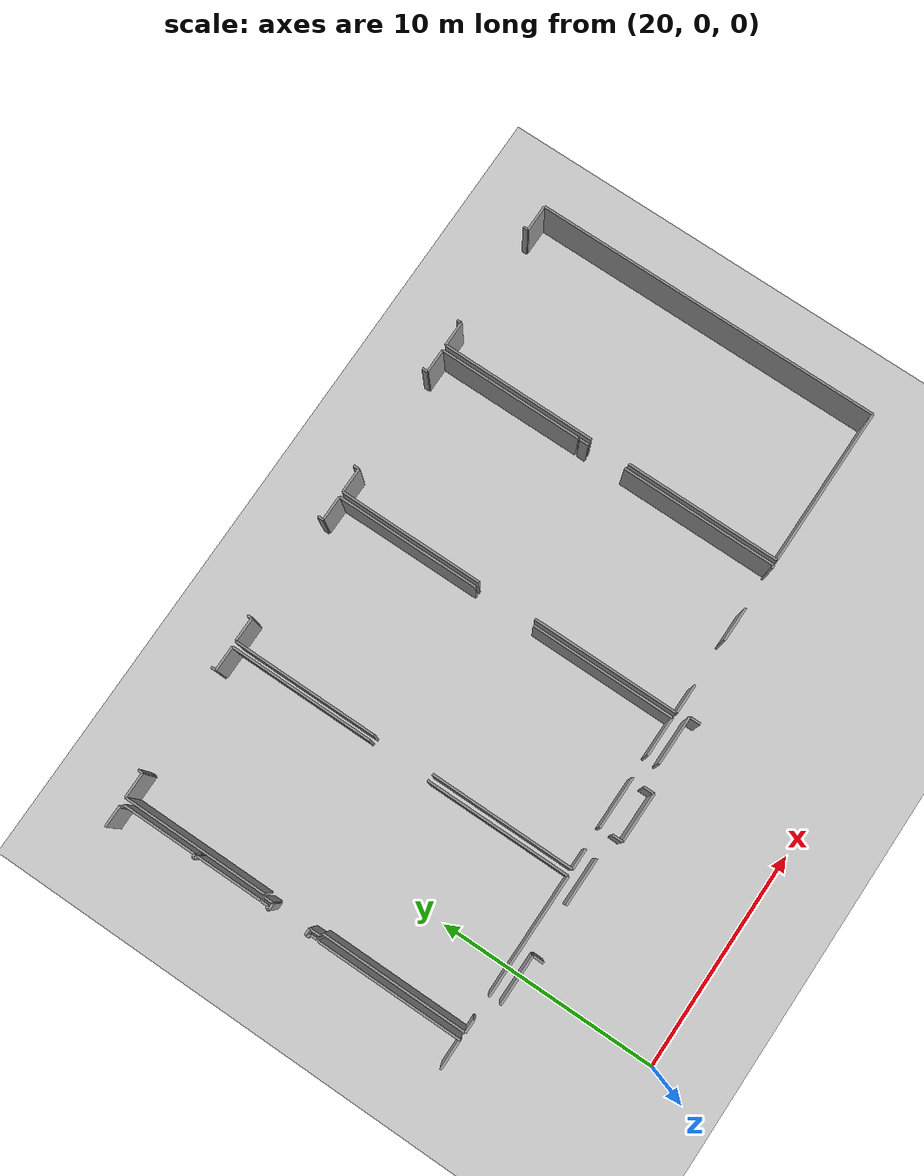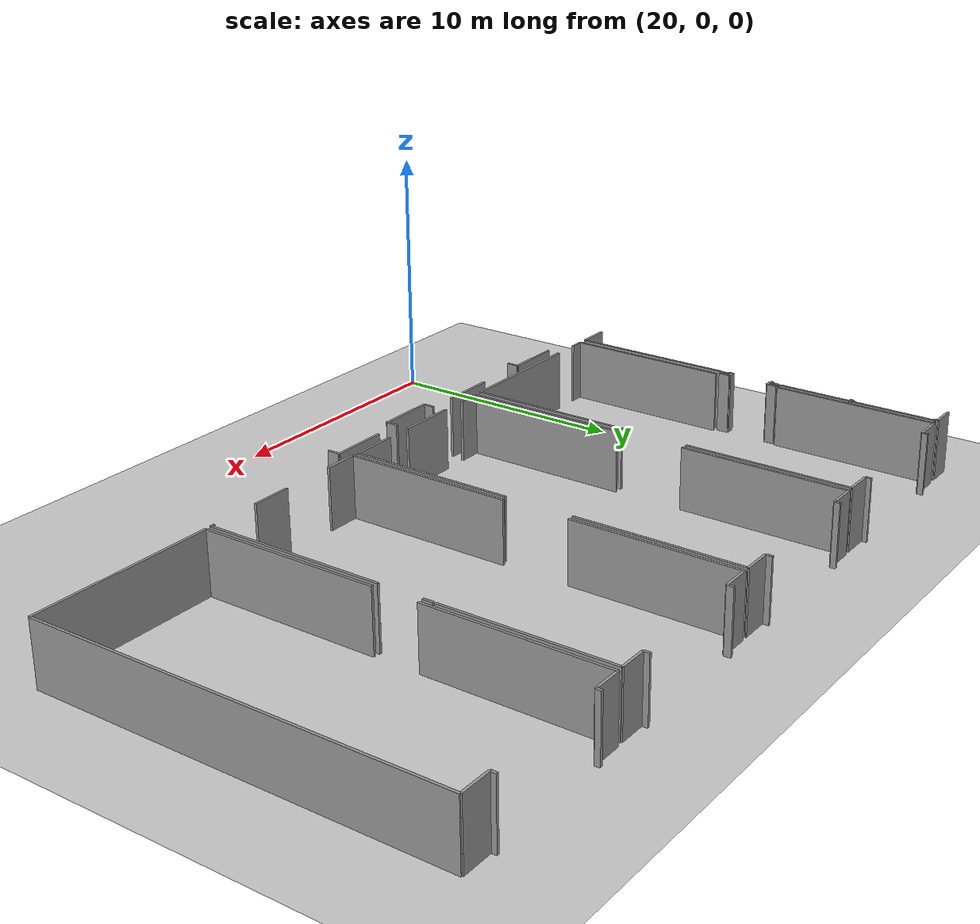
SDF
<sdf version="1.6">
 <world name="default">
  <model name="ground_plane">
   <static>1</static>
   <link name="link">
    <collision name="collision">
     <geometry><plane><normal>0 0 1</normal><size>100 100</size></plane></geometry>
     <surface><friction><ode><mu>100</mu><mu2>50</mu2></ode></friction></surface>
    </collision>
    <visual name="visual">
     <cast_shadows>0</cast_shadows>
     <geometry><plane><normal>0 0 1</normal><size>100 100</size></plane></geometry>
     <material>
      <script><uri>file://media/materials/scripts/gazebo.material</uri><name>Gazebo/Grey</name></script>
     </material>
    </visual>
   </link>
  </model>
  <model name="50045230">
   <static>1</static>
   <link name="Wall_10">
    <collision name="Wall_10_Collision">
     <geometry><box><size>0.306092653015 0.1 2.5</size></box></geometry>
     <pose>0.153046326507 0 1.25 0 0 0</pose>
    </collision>
    <visual name="Wall_10_Visual">
     <pose>0.153046326507 0 1.25 0 0 0</pose>
     <geometry><box><size>0.306092653015 0.1 2.5</size></box></geometry>
     <material>
      <script><uri>file://media/materials/scripts/gazebo.material</uri><name>Gazebo/Grey</name></script>
      <ambient>1 1 1 1</ambient>
     </material>
    </visual>
    <pose>63.6178856628 -7.01740576637 0 0 0 -1.57079632679</pose>
   </link>
   <link name="Wall_11">
    <collision name="Wall_11_Collision">
     <geometry><box><size>0.116927139538 0.1 2.5</size></box></geometry>
     <pose>0.0584635697691 0 1.25 0 0 0</pose>
    </collision>
    <visual name="Wall_11_Visual">
     <pose>0.0584635697691 0 1.25 0 0 0</pose>
     <geometry><box><size>0.116927139538 0.1 2.5</size></box></geometry>
     <material>
      <script><uri>file://media/materials/scripts/gazebo.material</uri><name>Gazebo/Grey</name></script>
      <ambient>1 1 1 1</ambient>
     </material>
    </visual>
    <pose>63.6178856628 -7.32349841939 0 0 0 3.14159265359</pose>
   </link>
   <link name="Wall_12">
    <collision name="Wall_12_Collision">
     <geometry><box><size>0.100168852438 0.1 2.5</size></box></geometry>
     <pose>0.0500844262191 0 1.25 0 0 0</pose>
    </collision>
    <visual name="Wall_12_Visual">
     <pose>0.0500844262191 0 1.25 0 0 0</pose>
     <geometry><box><size>0.100168852438 0.1 2.5</size></box></geometry>
     <material>
      <script><uri>file://media/materials/scripts/gazebo.material</uri><name>Gazebo/Grey</name></script>
      <ambient>1 1 1 1</ambient>
     </material>
    </visual>
    <pose>63.5009585232 -7.32349841939 0 0 0 -1.57079632679</pose>
   </link>
   <link name="Wall_13">
    <collision name="Wall_13_Collision">
     <geometry><box><size>0.317264844415 0.1 2.5</size></box></geometry>
     <pose>0.158632422207 0 1.25 0 0 0</pose>
    </collision>
    <visual name="Wall_13_Visual">
     <pose>0.158632422207 0 1.25 0 0 0</pose>
     <geometry><box><size>0.317264844415 0.1 2.5</size></box></geometry>
     <material>
      <script><uri>file://media/materials/scripts/gazebo.material</uri><name>Gazebo/Grey</name></script>
      <ambient>1 1 1 1</ambient>
     </material>
    </visual>
    <pose>63.5009585232 -7.42366727183 0 0 0 0.0</pose>
   </link>
   <link name="Wall_14">
    <collision name="Wall_14_Collision">
     <geometry><box><size>0.400675409753 0.1 2.5</size></box></geometry>
     <pose>0.200337704876 0 1.25 0 0 0</pose>
    </collision>
    <visual name="Wall_14_Visual">
     <pose>0.200337704876 0 1.25 0 0 0</pose>
     <geometry><box><size>0.400675409753 0.1 2.5</size></box></geometry>
     <material>
      <script><uri>file://media/materials/scripts/gazebo.material</uri><name>Gazebo/Grey</name></script>
      <ambient>1 1 1 1</ambient>
     </material>
    </visual>
    <pose>63.8182233677 -7.42366727183 0 0 0 1.57079632679</pose>
   </link>
   <link name="Wall_15">
    <collision name="Wall_15_Collision">
     <geometry><box><size>0.408673683141 0.1 2.5</size></box></geometry>
     <pose>0.204336841571 0 1.25 0 0 0</pose>
    </collision>
    <visual name="Wall_15_Visual">
     <pose>0.204336841571 0 1.25 0 0 0</pose>
     <geometry><box><size>0.408673683141 0.1 2.5</size></box></geometry>
     <material>
      <script><uri>file://media/materials/scripts/gazebo.material</uri><name>Gazebo/Grey</name></script>
      <ambient>1 1 1 1</ambient>
     </material>
    </visual>
    <pose>85.9985780847 -7.02299186207 0 0 0 -1.57079632679</pose>
   </link>
   <link name="Wall_16">
    <collision name="Wall_16_Collision">
     <geometry><box><size>7.1857503777 0.1 2.5</size></box></geometry>
     <pose>3.59287518885 0 1.25 0 0 0</pose>
    </collision>
    <visual name="Wall_16_Visual">
     <pose>3.59287518885 0 1.25 0 0 0</pose>
     <geometry><box><size>7.1857503777 0.1 2.5</size></box></geometry>
     <material>
      <script><uri>file://media/materials/scripts/gazebo.material</uri><name>Gazebo/Grey</name></script>
      <ambient>1 1 1 1</ambient>
     </material>
    </visual>
    <pose>85.9985780847 -9.19166656087 0 0 0 -1.57079632679</pose>
   </link>
   <link name="Wall_17">
    <collision name="Wall_17_Collision">
     <geometry><box><size>0.150443713738 0.1 2.5</size></box></geometry>
     <pose>0.075221856869 0 1.25 0 0 0</pose>
    </collision>
    <visual name="Wall_17_Visual">
     <pose>0.075221856869 0 1.25 0 0 0</pose>
     <geometry><box><size>0.150443713738 0.1 2.5</size></box></geometry>
     <material>
      <script><uri>file://media/materials/scripts/gazebo.material</uri><name>Gazebo/Grey</name></script>
      <ambient>1 1 1 1</ambient>
     </material>
    </visual>
    <pose>85.9985780847 -16.3774169386 0 0 0 3.14159265359</pose>
   </link>
   <link name="Wall_18">
    <collision name="Wall_18_Collision">
     <geometry><box><size>1.57426333363 0.1 2.5</size></box></geometry>
     <pose>0.787131666815 0 1.25 0 0 0</pose>
    </collision>
    <visual name="Wall_18_Visual">
     <pose>0.787131666815 0 1.25 0 0 0</pose>
     <geometry><box><size>1.57426333363 0.1 2.5</size></box></geometry>
     <material>
      <script><uri>file://media/materials/scripts/gazebo.material</uri><name>Gazebo/Grey</name></script>
      <ambient>1 1 1 1</ambient>
     </material>
    </visual>
    <pose>83.893000876 -16.3774169386 0 0 0 3.14159265359</pose>
   </link>
   <link name="Wall_19">
    <collision name="Wall_19_Collision">
     <geometry><box><size>1.3432021024 0.1 2.5</size></box></geometry>
     <pose>0.671601051202 0 1.25 0 0 0</pose>
    </collision>
    <visual name="Wall_19_Visual">
     <pose>0.671601051202 0 1.25 0 0 0</pose>
     <geometry><box><size>1.3432021024 0.1 2.5</size></box></geometry>
     <material>
      <script><uri>file://media/materials/scripts/gazebo.material</uri><name>Gazebo/Grey</name></script>
      <ambient>1 1 1 1</ambient>
     </material>
    </visual>
    <pose>80.1528558914 -16.3774169386 0 0 0 3.14159265359</pose>
   </link>
   <link name="Wall_20">
    <collision name="Wall_20_Collision">
     <geometry><box><size>6.75409752815 0.1 2.5</size></box></geometry>
     <pose>3.37704876408 0 1.25 0 0 0</pose>
    </collision>
    <visual name="Wall_20_Visual">
     <pose>3.37704876408 0 1.25 0 0 0</pose>
     <geometry><box><size>6.75409752815 0.1 2.5</size></box></geometry>
     <material>
      <script><uri>file://media/materials/scripts/gazebo.material</uri><name>Gazebo/Grey</name></script>
      <ambient>1 1 1 1</ambient>
     </material>
    </visual>
    <pose>78.809653789 -16.3774169386 0 0 0 1.57079632679</pose>
   </link>
   <link name="Wall_21">
    <collision name="Wall_21_Collision">
     <geometry><box><size>0.473294653853 0.1 2.5</size></box></geometry>
     <pose>0.236647326926 0 1.25 0 0 0</pose>
    </collision>
    <visual name="Wall_21_Visual">
     <pose>0.236647326926 0 1.25 0 0 0</pose>
     <geometry><box><size>0.473294653853 0.1 2.5</size></box></geometry>
     <material>
      <script><uri>file://media/materials/scripts/gazebo.material</uri><name>Gazebo/Grey</name></script>
      <ambient>1 1 1 1</ambient>
     </material>
    </visual>
    <pose>63.813525969 -9.62331941041 0 0 0 1.57079632679</pose>
   </link>
   <link name="Wall_22">
    <collision name="Wall_22_Collision">
     <geometry><box><size>0.316757017533 0.1 2.5</size></box></geometry>
     <pose>0.158378508766 0 1.25 0 0 0</pose>
    </collision>
    <visual name="Wall_22_Visual">
     <pose>0.158378508766 0 1.25 0 0 0</pose>
     <geometry><box><size>0.316757017533 0.1 2.5</size></box></geometry>
     <material>
      <script><uri>file://media/materials/scripts/gazebo.material</uri><name>Gazebo/Grey</name></script>
      <ambient>1 1 1 1</ambient>
     </material>
    </visual>
    <pose>63.813525969 -9.15002475656 0 0 0 3.14159265359</pose>
   </link>
   <link name="Wall_24">
    <collision name="Wall_24_Collision">
     <geometry><box><size>0.143968920995 0.1 2.5</size></box></geometry>
     <pose>0.0719844604974 0 1.25 0 0 0</pose>
    </collision>
    <visual name="Wall_24_Visual">
     <pose>0.0719844604974 0 1.25 0 0 0</pose>
     <geometry><box><size>0.143968920995 0.1 2.5</size></box></geometry>
     <material>
      <script><uri>file://media/materials/scripts/gazebo.material</uri><name>Gazebo/Grey</name></script>
      <ambient>1 1 1 1</ambient>
     </material>
    </visual>
    <pose>63.4967689515 -9.2843449668 0 0 0 0.0</pose>
   </link>
   <link name="Wall_25">
    <collision name="Wall_25_Collision">
     <geometry><box><size>0.336054439042 0.1 2.5</size></box></geometry>
     <pose>0.168027219521 0 1.25 0 0 0</pose>
    </collision>
    <visual name="Wall_25_Visual">
     <pose>0.168027219521 0 1.25 0 0 0</pose>
     <geometry><box><size>0.336054439042 0.1 2.5</size></box></geometry>
     <material>
      <script><uri>file://media/materials/scripts/gazebo.material</uri><name>Gazebo/Grey</name></script>
      <ambient>1 1 1 1</ambient>
     </material>
    </visual>
    <pose>63.6407378725 -9.2843449668 0 0 0 -1.57079632679</pose>
   </link>
   <link name="Wall_66">
    <collision name="Wall_66_Collision">
     <geometry><box><size>3.03439257557 0.1 2.5</size></box></geometry>
     <pose>1.51719628779 0 1.25 0 0 0</pose>
    </collision>
    <visual name="Wall_66_Visual">
     <pose>1.51719628779 0 1.25 0 0 0</pose>
     <geometry><box><size>3.03439257557 0.1 2.5</size></box></geometry>
     <material>
      <script><uri>file://media/materials/scripts/gazebo.material</uri><name>Gazebo/Grey</name></script>
      <ambient>1 1 1 1</ambient>
     </material>
    </visual>
    <pose>63.6307082915 -6.94008912362 0 0 0 1.57079632679</pose>
   </link>
   <link name="Wall_67">
    <collision name="Wall_67_Collision">
     <geometry><box><size>0.130892378788 0.1 2.5</size></box></geometry>
     <pose>0.065446189394 0 1.25 0 0 0</pose>
    </collision>
    <visual name="Wall_67_Visual">
     <pose>0.065446189394 0 1.25 0 0 0</pose>
     <geometry><box><size>0.130892378788 0.1 2.5</size></box></geometry>
     <material>
      <script><uri>file://media/materials/scripts/gazebo.material</uri><name>Gazebo/Grey</name></script>
      <ambient>1 1 1 1</ambient>
     </material>
    </visual>
    <pose>63.6307082915 -3.90569654805 0 0 0 3.14159265359</pose>
   </link>
   <link name="Wall_68">
    <collision name="Wall_68_Collision">
     <geometry><box><size>0.123401932281 0.1 2.5</size></box></geometry>
     <pose>0.0617009661406 0 1.25 0 0 0</pose>
    </collision>
    <visual name="Wall_68_Visual">
     <pose>0.0617009661406 0 1.25 0 0 0</pose>
     <geometry><box><size>0.123401932281 0.1 2.5</size></box></geometry>
     <material>
      <script><uri>file://media/materials/scripts/gazebo.material</uri><name>Gazebo/Grey</name></script>
      <ambient>1 1 1 1</ambient>
     </material>
    </visual>
    <pose>63.4998159128 -3.90569654805 0 0 0 1.57079632679</pose>
   </link>
   <link name="Wall_69">
    <collision name="Wall_69_Collision">
     <geometry><box><size>0.138001955134 0.1 2.5</size></box></geometry>
     <pose>0.0690009775668 0 1.25 0 0 0</pose>
    </collision>
    <visual name="Wall_69_Visual">
     <pose>0.0690009775668 0 1.25 0 0 0</pose>
     <geometry><box><size>0.138001955134 0.1 2.5</size></box></geometry>
     <material>
      <script><uri>file://media/materials/scripts/gazebo.material</uri><name>Gazebo/Grey</name></script>
      <ambient>1 1 1 1</ambient>
     </material>
    </visual>
    <pose>63.4998159128 -3.78229461577 0 0 0 0.0</pose>
   </link>
   <link name="Wall_70">
    <collision name="Wall_70_Collision">
     <geometry><box><size>3.40840707403 0.1 2.5</size></box></geometry>
     <pose>1.70420353701 0 1.25 0 0 0</pose>
    </collision>
    <visual name="Wall_70_Visual">
     <pose>1.70420353701 0 1.25 0 0 0</pose>
     <geometry><box><size>3.40840707403 0.1 2.5</size></box></geometry>
     <material>
      <script><uri>file://media/materials/scripts/gazebo.material</uri><name>Gazebo/Grey</name></script>
      <ambient>1 1 1 1</ambient>
     </material>
    </visual>
    <pose>63.6378178679 -3.78229461577 0 0 0 1.57079632679</pose>
   </link>
   <link name="Wall_71">
    <collision name="Wall_71_Collision">
     <geometry><box><size>0.112737567763 0.1 2.5</size></box></geometry>
     <pose>0.0563687838816 0 1.25 0 0 0</pose>
    </collision>
    <visual name="Wall_71_Visual">
     <pose>0.0563687838816 0 1.25 0 0 0</pose>
     <geometry><box><size>0.112737567763 0.1 2.5</size></box></geometry>
     <material>
      <script><uri>file://media/materials/scripts/gazebo.material</uri><name>Gazebo/Grey</name></script>
      <ambient>1 1 1 1</ambient>
     </material>
    </visual>
    <pose>63.6378178679 -0.373887541737 0 0 0 3.14159265359</pose>
   </link>
   <link name="Wall_72">
    <collision name="Wall_72_Collision">
     <geometry><box><size>0.107405385504 0.1 2.5</size></box></geometry>
     <pose>0.053702692752 0 1.25 0 0 0</pose>
    </collision>
    <visual name="Wall_72_Visual">
     <pose>0.053702692752 0 1.25 0 0 0</pose>
     <geometry><box><size>0.107405385504 0.1 2.5</size></box></geometry>
     <material>
      <script><uri>file://media/materials/scripts/gazebo.material</uri><name>Gazebo/Grey</name></script>
      <ambient>1 1 1 1</ambient>
     </material>
    </visual>
    <pose>63.5250803001 -0.373887541737 0 0 0 1.57079632679</pose>
   </link>
   <link name="Wall_73">
    <collision name="Wall_73_Collision">
     <geometry><box><size>0.978328487819 0.1 2.5</size></box></geometry>
     <pose>0.489164243909 0 1.25 0 0 0</pose>
    </collision>
    <visual name="Wall_73_Visual">
     <pose>0.489164243909 0 1.25 0 0 0</pose>
     <geometry><box><size>0.978328487819 0.1 2.5</size></box></geometry>
     <material>
      <script><uri>file://media/materials/scripts/gazebo.material</uri><name>Gazebo/Grey</name></script>
      <ambient>1 1 1 1</ambient>
     </material>
    </visual>
    <pose>63.5250803001 -0.266482156233 0 0 0 3.14159265359</pose>
   </link>
   <link name="Wall_78">
    <collision name="Wall_78_Collision">
     <geometry><box><size>6.67297218378 0.1 2.5</size></box></geometry>
     <pose>3.33648609189 0 1.25 0 0 0</pose>
    </collision>
    <visual name="Wall_78_Visual">
     <pose>3.33648609189 0 1.25 0 0 0</pose>
     <geometry><box><size>6.67297218378 0.1 2.5</size></box></geometry>
     <material>
      <script><uri>file://media/materials/scripts/gazebo.material</uri><name>Gazebo/Grey</name></script>
      <ambient>1 1 1 1</ambient>
     </material>
    </visual>
    <pose>63.9067122018 -6.91774474082 0 0 0 1.57079632679</pose>
   </link>
   <link name="Wall_79">
    <collision name="Wall_79_Collision">
     <geometry><box><size>1.14692701258 0.1 2.5</size></box></geometry>
     <pose>0.573463506291 0 1.25 0 0 0</pose>
    </collision>
    <visual name="Wall_79_Visual">
     <pose>0.573463506291 0 1.25 0 0 0</pose>
     <geometry><box><size>1.14692701258 0.1 2.5</size></box></geometry>
     <material>
      <script><uri>file://media/materials/scripts/gazebo.material</uri><name>Gazebo/Grey</name></script>
      <ambient>1 1 1 1</ambient>
     </material>
    </visual>
    <pose>63.9067122018 -0.244772557035 0 0 0 0.0</pose>
   </link>
   <link name="Wall_80">
    <collision name="Wall_80_Collision">
     <geometry><box><size>0.225348178806 0.1 2.5</size></box></geometry>
     <pose>0.112674089403 0 1.25 0 0 0</pose>
    </collision>
    <visual name="Wall_80_Visual">
     <pose>0.112674089403 0 1.25 0 0 0</pose>
     <geometry><box><size>0.225348178806 0.1 2.5</size></box></geometry>
     <material>
      <script><uri>file://media/materials/scripts/gazebo.material</uri><name>Gazebo/Grey</name></script>
      <ambient>1 1 1 1</ambient>
     </material>
    </visual>
    <pose>65.0536392144 -0.244772557035 0 0 0 1.57079632679</pose>
   </link>
   <link name="Wall_81">
    <collision name="Wall_81_Collision">
     <geometry><box><size>0.233727322356 0.1 2.5</size></box></geometry>
     <pose>0.116863661178 0 1.25 0 0 0</pose>
    </collision>
    <visual name="Wall_81_Visual">
     <pose>0.116863661178 0 1.25 0 0 0</pose>
     <geometry><box><size>0.233727322356 0.1 2.5</size></box></geometry>
     <material>
      <script><uri>file://media/materials/scripts/gazebo.material</uri><name>Gazebo/Grey</name></script>
      <ambient>1 1 1 1</ambient>
     </material>
    </visual>
    <pose>69.9870504145 -0.0194243782295 0 0 0 -1.57079632679</pose>
   </link>
   <link name="Wall_82">
    <collision name="Wall_82_Collision">
     <geometry><box><size>1.1352469943 0.1 2.5</size></box></geometry>
     <pose>0.56762349715 0 1.25 0 0 0</pose>
    </collision>
    <visual name="Wall_82_Visual">
     <pose>0.56762349715 0 1.25 0 0 0</pose>
     <geometry><box><size>1.1352469943 0.1 2.5</size></box></geometry>
     <material>
      <script><uri>file://media/materials/scripts/gazebo.material</uri><name>Gazebo/Grey</name></script>
      <ambient>1 1 1 1</ambient>
     </material>
    </visual>
    <pose>69.9870504145 -0.253151700585 0 0 0 0.0</pose>
   </link>
   <link name="Wall_83">
    <collision name="Wall_83_Collision">
     <geometry><box><size>6.66459527609 0.1 2.5</size></box></geometry>
     <pose>3.33229763805 0 1.25 0 0 0</pose>
    </collision>
    <visual name="Wall_83_Visual">
     <pose>3.33229763805 0 1.25 0 0 0</pose>
     <geometry><box><size>6.66459527609 0.1 2.5</size></box></geometry>
     <material>
      <script><uri>file://media/materials/scripts/gazebo.material</uri><name>Gazebo/Grey</name></script>
      <ambient>1 1 1 1</ambient>
     </material>
    </visual>
    <pose>71.1222974088 -0.253151700585 0 0 0 -1.57161545224</pose>
   </link>
   <link name="Wall_84">
    <collision name="Wall_84_Collision">
     <geometry><box><size>6.71207485368 0.1 2.5</size></box></geometry>
     <pose>3.35603742684 0 1.25 0 0 0</pose>
    </collision>
    <visual name="Wall_84_Visual">
     <pose>3.35603742684 0 1.25 0 0 0</pose>
     <geometry><box><size>6.71207485368 0.1 2.5</size></box></geometry>
     <material>
      <script><uri>file://media/materials/scripts/gazebo.material</uri><name>Gazebo/Grey</name></script>
      <ambient>1 1 1 1</ambient>
     </material>
    </visual>
    <pose>71.3757030228 -6.94008912362 0 0 0 1.57079632679</pose>
   </link>
   <link name="Wall_85">
    <collision name="Wall_85_Collision">
     <geometry><box><size>1.11607652951 0.1 2.5</size></box></geometry>
     <pose>0.558038264756 0 1.25 0 0 0</pose>
    </collision>
    <visual name="Wall_85_Visual">
     <pose>0.558038264756 0 1.25 0 0 0</pose>
     <geometry><box><size>1.11607652951 0.1 2.5</size></box></geometry>
     <material>
      <script><uri>file://media/materials/scripts/gazebo.material</uri><name>Gazebo/Grey</name></script>
      <ambient>1 1 1 1</ambient>
     </material>
    </visual>
    <pose>71.3757030228 -0.228014269935 0 0 0 0.0</pose>
   </link>
   <link name="Wall_86">
    <collision name="Wall_86_Collision">
     <geometry><box><size>0.216969035256 0.1 2.5</size></box></geometry>
     <pose>0.108484517628 0 1.25 0 0 0</pose>
    </collision>
    <visual name="Wall_86_Visual">
     <pose>0.108484517628 0 1.25 0 0 0</pose>
     <geometry><box><size>0.216969035256 0.1 2.5</size></box></geometry>
     <material>
      <script><uri>file://media/materials/scripts/gazebo.material</uri><name>Gazebo/Grey</name></script>
      <ambient>1 1 1 1</ambient>
     </material>
    </visual>
    <pose>72.4917795524 -0.228014269935 0 0 0 1.57079632679</pose>
   </link>
   <link name="Wall_87">
    <collision name="Wall_87_Collision">
     <geometry><box><size>0.265339545749 0.1 2.5</size></box></geometry>
     <pose>0.132669772874 0 1.25 0 0 0</pose>
    </collision>
    <visual name="Wall_87_Visual">
     <pose>0.132669772874 0 1.25 0 0 0</pose>
     <geometry><box><size>0.265339545749 0.1 2.5</size></box></geometry>
     <material>
      <script><uri>file://media/materials/scripts/gazebo.material</uri><name>Gazebo/Grey</name></script>
      <ambient>1 1 1 1</ambient>
     </material>
    </visual>
    <pose>77.3931976589 -0.0110452346795 0 0 0 -1.57079632679</pose>
   </link>
   <link name="Wall_88">
    <collision name="Wall_88_Collision">
     <geometry><box><size>1.15416354565 0.1 2.5</size></box></geometry>
     <pose>0.577081772824 0 1.25 0 0 0</pose>
    </collision>
    <visual name="Wall_88_Visual">
     <pose>0.577081772824 0 1.25 0 0 0</pose>
     <geometry><box><size>1.15416354565 0.1 2.5</size></box></geometry>
     <material>
      <script><uri>file://media/materials/scripts/gazebo.material</uri><name>Gazebo/Grey</name></script>
      <ambient>1 1 1 1</ambient>
     </material>
    </visual>
    <pose>77.3931976589 -0.276384780428 0 0 0 0.0</pose>
   </link>
   <link name="Wall_89">
    <collision name="Wall_89_Collision">
     <geometry><box><size>6.66371043971 0.1 2.5</size></box></geometry>
     <pose>3.33185521986 0 1.25 0 0 0</pose>
    </collision>
    <visual name="Wall_89_Visual">
     <pose>3.33185521986 0 1.25 0 0 0</pose>
     <geometry><box><size>6.66371043971 0.1 2.5</size></box></geometry>
     <material>
      <script><uri>file://media/materials/scripts/gazebo.material</uri><name>Gazebo/Grey</name></script>
      <ambient>1 1 1 1</ambient>
     </material>
    </visual>
    <pose>78.5473612046 -0.276384780428 0 0 0 -1.56944363748</pose>
   </link>
   <link name="Wall_90">
    <collision name="Wall_90_Collision">
     <geometry><box><size>6.67792349588 0.1 2.5</size></box></geometry>
     <pose>3.33896174794 0 1.25 0 0 0</pose>
    </collision>
    <visual name="Wall_90_Visual">
     <pose>3.33896174794 0 1.25 0 0 0</pose>
     <geometry><box><size>6.67792349588 0.1 2.5</size></box></geometry>
     <material>
      <script><uri>file://media/materials/scripts/gazebo.material</uri><name>Gazebo/Grey</name></script>
      <ambient>1 1 1 1</ambient>
     </material>
    </visual>
    <pose>78.789213757 -6.94453260883 0 0 0 1.57079632679</pose>
   </link>
   <link name="Wall_91">
    <collision name="Wall_91_Collision">
     <geometry><box><size>1.14273744081 0.1 2.5</size></box></geometry>
     <pose>0.571368720403 0 1.25 0 0 0</pose>
    </collision>
    <visual name="Wall_91_Visual">
     <pose>0.571368720403 0 1.25 0 0 0</pose>
     <geometry><box><size>1.14273744081 0.1 2.5</size></box></geometry>
     <material>
      <script><uri>file://media/materials/scripts/gazebo.material</uri><name>Gazebo/Grey</name></script>
      <ambient>1 1 1 1</ambient>
     </material>
    </visual>
    <pose>78.789213757 -0.266609112953 0 0 0 0.0</pose>
   </link>
   <link name="Wall_92">
    <collision name="Wall_92_Collision">
     <geometry><box><size>0.266609112953 0.1 2.5</size></box></geometry>
     <pose>0.133304556477 0 1.25 0 0 0</pose>
    </collision>
    <visual name="Wall_92_Visual">
     <pose>0.133304556477 0 1.25 0 0 0</pose>
     <geometry><box><size>0.266609112953 0.1 2.5</size></box></geometry>
     <material>
      <script><uri>file://media/materials/scripts/gazebo.material</uri><name>Gazebo/Grey</name></script>
      <ambient>1 1 1 1</ambient>
     </material>
    </visual>
    <pose>79.9319511978 -0.266609112953 0 0 0 1.57079632679</pose>
   </link>
   <link name="Wall_93">
    <collision name="Wall_93_Collision">
     <geometry><box><size>0.250993436338 0.1 2.5</size></box></geometry>
     <pose>0.125496718169 0 1.25 0 0 0</pose>
    </collision>
    <visual name="Wall_93_Visual">
     <pose>0.125496718169 0 1.25 0 0 0</pose>
     <geometry><box><size>0.250993436338 0.1 2.5</size></box></geometry>
     <material>
      <script><uri>file://media/materials/scripts/gazebo.material</uri><name>Gazebo/Grey</name></script>
      <ambient>1 1 1 1</ambient>
     </material>
    </visual>
    <pose>84.8753919789 -0.0 0 0 0 -1.57079632679</pose>
   </link>
   <link name="Wall_94">
    <collision name="Wall_94_Collision">
     <geometry><box><size>1.11366435182 0.1 2.5</size></box></geometry>
     <pose>0.556832175911 0 1.25 0 0 0</pose>
    </collision>
    <visual name="Wall_94_Visual">
     <pose>0.556832175911 0 1.25 0 0 0</pose>
     <geometry><box><size>1.11366435182 0.1 2.5</size></box></geometry>
     <material>
      <script><uri>file://media/materials/scripts/gazebo.material</uri><name>Gazebo/Grey</name></script>
      <ambient>1 1 1 1</ambient>
     </material>
    </visual>
    <pose>84.8753919789 -0.250993436338 0 0 0 0.0</pose>
   </link>
   <link name="Wall_95">
    <collision name="Wall_95_Collision">
     <geometry><box><size>6.69354892487 0.1 2.5</size></box></geometry>
     <pose>3.34677446243 0 1.25 0 0 0</pose>
    </collision>
    <visual name="Wall_95_Visual">
     <pose>3.34677446243 0 1.25 0 0 0</pose>
     <geometry><box><size>6.69354892487 0.1 2.5</size></box></geometry>
     <material>
      <script><uri>file://media/materials/scripts/gazebo.material</uri><name>Gazebo/Grey</name></script>
      <ambient>1 1 1 1</ambient>
     </material>
    </visual>
    <pose>85.9890563307 -0.250993436338 0 0 0 -1.56908929357</pose>
   </link>
   <link name="Wall_96">
    <collision name="Wall_96_Collision">
     <geometry><box><size>7.31803928041 0.1 2.5</size></box></geometry>
     <pose>3.6590196402 0 1.25 0 0 0</pose>
    </collision>
    <visual name="Wall_96_Visual">
     <pose>3.6590196402 0 1.25 0 0 0</pose>
     <geometry><box><size>7.31803928041 0.1 2.5</size></box></geometry>
     <material>
      <script><uri>file://media/materials/scripts/gazebo.material</uri><name>Gazebo/Grey</name></script>
      <ambient>1 1 1 1</ambient>
     </material>
    </visual>
    <pose>93.5635481864 -16.3620551754 0 0 0 3.14159265359</pose>
   </link>
   <link name="Wall_97">
    <collision name="Wall_97_Collision">
     <geometry><box><size>7.13230159839 0.1 2.5</size></box></geometry>
     <pose>3.56615079919 0 1.25 0 0 0</pose>
    </collision>
    <visual name="Wall_97_Visual">
     <pose>3.56615079919 0 1.25 0 0 0</pose>
     <geometry><box><size>7.13230159839 0.1 2.5</size></box></geometry>
     <material>
      <script><uri>file://media/materials/scripts/gazebo.material</uri><name>Gazebo/Grey</name></script>
      <ambient>1 1 1 1</ambient>
     </material>
    </visual>
    <pose>86.245508906 -16.3620551754 0 0 0 1.57079632679</pose>
   </link>
   <link name="Wall_98">
    <collision name="Wall_98_Collision">
     <geometry><box><size>7.18676603146 0.1 2.5</size></box></geometry>
     <pose>3.59338301573 0 1.25 0 0 0</pose>
    </collision>
    <visual name="Wall_98_Visual">
     <pose>3.59338301573 0 1.25 0 0 0</pose>
     <geometry><box><size>7.18676603146 0.1 2.5</size></box></geometry>
     <material>
      <script><uri>file://media/materials/scripts/gazebo.material</uri><name>Gazebo/Grey</name></script>
      <ambient>1 1 1 1</ambient>
     </material>
    </visual>
    <pose>86.245508906 -7.4147803014 0 0 0 1.57079632679</pose>
   </link>
   <link name="Wall_99">
    <collision name="Wall_99_Collision">
     <geometry><box><size>1.14261048409 0.1 2.5</size></box></geometry>
     <pose>0.571305242043 0 1.25 0 0 0</pose>
    </collision>
    <visual name="Wall_99_Visual">
     <pose>0.571305242043 0 1.25 0 0 0</pose>
     <geometry><box><size>1.14261048409 0.1 2.5</size></box></geometry>
     <material>
      <script><uri>file://media/materials/scripts/gazebo.material</uri><name>Gazebo/Grey</name></script>
      <ambient>1 1 1 1</ambient>
     </material>
    </visual>
    <pose>86.245508906 -0.228014269935 0 0 0 0.0</pose>
   </link>
   <link name="Wall_100">
    <collision name="Wall_100_Collision">
     <geometry><box><size>0.20985945891 0.1 2.5</size></box></geometry>
     <pose>0.104929729455 0 1.25 0 0 0</pose>
    </collision>
    <visual name="Wall_100_Visual">
     <pose>0.104929729455 0 1.25 0 0 0</pose>
     <geometry><box><size>0.20985945891 0.1 2.5</size></box></geometry>
     <material>
      <script><uri>file://media/materials/scripts/gazebo.material</uri><name>Gazebo/Grey</name></script>
      <ambient>1 1 1 1</ambient>
     </material>
    </visual>
    <pose>87.3881193901 -0.228014269935 0 0 0 1.57079632679</pose>
   </link>
   <link name="Wall_101">
    <collision name="Wall_101_Collision">
     <geometry><box><size>0.229156880419 0.1 2.5</size></box></geometry>
     <pose>0.11457844021 0 1.25 0 0 0</pose>
    </collision>
    <visual name="Wall_101_Visual">
     <pose>0.11457844021 0 1.25 0 0 0</pose>
     <geometry><box><size>0.229156880419 0.1 2.5</size></box></geometry>
     <material>
      <script><uri>file://media/materials/scripts/gazebo.material</uri><name>Gazebo/Grey</name></script>
      <ambient>1 1 1 1</ambient>
     </material>
    </visual>
    <pose>92.2918227176 -0.0181548110249 0 0 0 -1.57079632679</pose>
   </link>
   <link name="Wall_102">
    <collision name="Wall_102_Collision">
     <geometry><box><size>1.23770106771 0.1 2.5</size></box></geometry>
     <pose>0.618850533853 0 1.25 0 0 0</pose>
    </collision>
    <visual name="Wall_102_Visual">
     <pose>0.618850533853 0 1.25 0 0 0</pose>
     <geometry><box><size>1.23770106771 0.1 2.5</size></box></geometry>
     <material>
      <script><uri>file://media/materials/scripts/gazebo.material</uri><name>Gazebo/Grey</name></script>
      <ambient>1 1 1 1</ambient>
     </material>
    </visual>
    <pose>92.2918227176 -0.247311691444 0 0 0 0.0</pose>
   </link>
   <link name="Wall_103">
    <collision name="Wall_103_Collision">
     <geometry><box><size>16.1147794032 0.1 2.5</size></box></geometry>
     <pose>8.05738970159 0 1.25 0 0 0</pose>
    </collision>
    <visual name="Wall_103_Visual">
     <pose>8.05738970159 0 1.25 0 0 0</pose>
     <geometry><box><size>16.1147794032 0.1 2.5</size></box></geometry>
     <material>
      <script><uri>file://media/materials/scripts/gazebo.material</uri><name>Gazebo/Grey</name></script>
      <ambient>1 1 1 1</ambient>
     </material>
    </visual>
    <pose>93.5295237853 -0.247311691444 0 0 0 -1.56868494658</pose>
   </link>
   <link name="Wall_104">
    <collision name="Wall_104_Collision">
     <geometry><box><size>6.6265060241 0.1 2.5</size></box></geometry>
     <pose>3.31325301205 0 1.25 0 0 0</pose>
    </collision>
    <visual name="Wall_104_Visual">
     <pose>3.31325301205 0 1.25 0 0 0</pose>
     <geometry><box><size>6.6265060241 0.1 2.5</size></box></geometry>
     <material>
      <script><uri>file://media/materials/scripts/gazebo.material</uri><name>Gazebo/Grey</name></script>
      <ambient>1 1 1 1</ambient>
     </material>
    </visual>
    <pose>71.4088387269 -16.348597763 0 0 0 1.57079632679</pose>
   </link>
   <link name="Wall_105">
    <collision name="Wall_105_Collision">
     <geometry><box><size>6.62358601953 0.1 2.5</size></box></geometry>
     <pose>3.31179300976 0 1.25 0 0 0</pose>
    </collision>
    <visual name="Wall_105_Visual">
     <pose>3.31179300976 0 1.25 0 0 0</pose>
     <geometry><box><size>6.62358601953 0.1 2.5</size></box></geometry>
     <material>
      <script><uri>file://media/materials/scripts/gazebo.material</uri><name>Gazebo/Grey</name></script>
      <ambient>1 1 1 1</ambient>
     </material>
    </visual>
    <pose>78.5608186169 -9.72209173893 0 0 0 -1.57079632679</pose>
   </link>
   <link name="Wall_106">
    <collision name="Wall_106_Collision">
     <geometry><box><size>1.80976805007 0.1 2.5</size></box></geometry>
     <pose>0.904884025036 0 1.25 0 0 0</pose>
    </collision>
    <visual name="Wall_106_Visual">
     <pose>0.904884025036 0 1.25 0 0 0</pose>
     <geometry><box><size>1.80976805007 0.1 2.5</size></box></geometry>
     <material>
      <script><uri>file://media/materials/scripts/gazebo.material</uri><name>Gazebo/Grey</name></script>
      <ambient>1 1 1 1</ambient>
     </material>
    </visual>
    <pose>78.5608186169 -16.3456777585 0 0 0 3.14159265359</pose>
   </link>
   <link name="Wall_107">
    <collision name="Wall_107_Collision">
     <geometry><box><size>2.37447154265 0.1 2.5</size></box></geometry>
     <pose>1.18723577133 0 1.25 0 0 0</pose>
    </collision>
    <visual name="Wall_107_Visual">
     <pose>1.18723577133 0 1.25 0 0 0</pose>
     <geometry><box><size>2.37447154265 0.1 2.5</size></box></geometry>
     <material>
      <script><uri>file://media/materials/scripts/gazebo.material</uri><name>Gazebo/Grey</name></script>
      <ambient>1 1 1 1</ambient>
     </material>
    </visual>
    <pose>75.7172419922 -16.3456777585 0 0 0 3.14159265359</pose>
   </link>
   <link name="Wall_108">
    <collision name="Wall_108_Collision">
     <geometry><box><size>0.940626874165 0.1 2.5</size></box></geometry>
     <pose>0.470313437083 0 1.25 0 0 0</pose>
    </collision>
    <visual name="Wall_108_Visual">
     <pose>0.470313437083 0 1.25 0 0 0</pose>
     <geometry><box><size>0.940626874165 0.1 2.5</size></box></geometry>
     <material>
      <script><uri>file://media/materials/scripts/gazebo.material</uri><name>Gazebo/Grey</name></script>
      <ambient>1 1 1 1</ambient>
     </material>
    </visual>
    <pose>72.3494610687 -16.3456777585 0 0 0 -3.13848833099</pose>
   </link>
   <link name="Wall_109">
    <collision name="Wall_109_Collision">
     <geometry><box><size>6.6675130448 0.1 2.5</size></box></geometry>
     <pose>3.3337565224 0 1.25 0 0 0</pose>
    </collision>
    <visual name="Wall_109_Visual">
     <pose>3.3337565224 0 1.25 0 0 0</pose>
     <geometry><box><size>6.6675130448 0.1 2.5</size></box></geometry>
     <material>
      <script><uri>file://media/materials/scripts/gazebo.material</uri><name>Gazebo/Grey</name></script>
      <ambient>1 1 1 1</ambient>
     </material>
    </visual>
    <pose>63.9481000927 -16.3647212665 0 0 0 1.57079632679</pose>
   </link>
   <link name="Wall_110">
    <collision name="Wall_110_Collision">
     <geometry><box><size>6.6675130448 0.1 2.5</size></box></geometry>
     <pose>3.3337565224 0 1.25 0 0 0</pose>
    </collision>
    <visual name="Wall_110_Visual">
     <pose>3.3337565224 0 1.25 0 0 0</pose>
     <geometry><box><size>6.6675130448 0.1 2.5</size></box></geometry>
     <material>
      <script><uri>file://media/materials/scripts/gazebo.material</uri><name>Gazebo/Grey</name></script>
      <ambient>1 1 1 1</ambient>
     </material>
    </visual>
    <pose>71.09360519 -9.69720822172 0 0 0 -1.57079632679</pose>
   </link>
   <link name="Wall_111">
    <collision name="Wall_111_Collision">
     <geometry><box><size>5.5204590755 0.1 2.5</size></box></geometry>
     <pose>2.76022953775 0 1.25 0 0 0</pose>
    </collision>
    <visual name="Wall_111_Visual">
     <pose>2.76022953775 0 1.25 0 0 0</pose>
     <geometry><box><size>5.5204590755 0.1 2.5</size></box></geometry>
     <material>
      <script><uri>file://media/materials/scripts/gazebo.material</uri><name>Gazebo/Grey</name></script>
      <ambient>1 1 1 1</ambient>
     </material>
    </visual>
    <pose>71.09360519 -16.3647212665 0 0 0 3.14159265359</pose>
   </link>
   <link name="Wall_112">
    <collision name="Wall_112_Collision">
     <geometry><box><size>0.584000914088 0.1 2.5</size></box></geometry>
     <pose>0.292000457044 0 1.25 0 0 0</pose>
    </collision>
    <visual name="Wall_112_Visual">
     <pose>0.292000457044 0 1.25 0 0 0</pose>
     <geometry><box><size>0.584000914088 0.1 2.5</size></box></geometry>
     <material>
      <script><uri>file://media/materials/scripts/gazebo.material</uri><name>Gazebo/Grey</name></script>
      <ambient>1 1 1 1</ambient>
     </material>
    </visual>
    <pose>64.5321010068 -16.3647212665 0 0 0 3.14159265359</pose>
   </link>
   <link name="Wall_114">
    <collision name="Wall_114_Collision">
     <geometry><box><size>6.65837216093 0.1 2.5</size></box></geometry>
     <pose>3.32918608047 0 1.25 0 0 0</pose>
    </collision>
    <visual name="Wall_114_Visual">
     <pose>3.32918608047 0 1.25 0 0 0</pose>
     <geometry><box><size>6.65837216093 0.1 2.5</size></box></geometry>
     <material>
      <script><uri>file://media/materials/scripts/gazebo.material</uri><name>Gazebo/Grey</name></script>
      <ambient>1 1 1 1</ambient>
     </material>
    </visual>
    <pose>63.6053169475 -9.68755951096 0 0 0 -1.57079632679</pose>
   </link>
   <link name="Wall_115">
    <collision name="Wall_115_Collision">
     <geometry><box><size>1.32149250321 0.1 2.5</size></box></geometry>
     <pose>0.660746251603 0 1.25 0 0 0</pose>
    </collision>
    <visual name="Wall_115_Visual">
     <pose>0.660746251603 0 1.25 0 0 0</pose>
     <geometry><box><size>1.32149250321 0.1 2.5</size></box></geometry>
     <material>
      <script><uri>file://media/materials/scripts/gazebo.material</uri><name>Gazebo/Grey</name></script>
      <ambient>1 1 1 1</ambient>
     </material>
    </visual>
    <pose>63.6053169475 -16.3459316719 0 0 0 3.14159265359</pose>
   </link>
   <link name="Wall_378">
    <collision name="Wall_378_Collision">
     <geometry><box><size>2.24548351467 0.1 2.5</size></box></geometry>
     <pose>1.12274175733 0 1.25 0 0 0</pose>
    </collision>
    <visual name="Wall_378_Visual">
     <pose>1.12274175733 0 1.25 0 0 0</pose>
     <geometry><box><size>2.24548351467 0.1 2.5</size></box></geometry>
     <material>
      <script><uri>file://media/materials/scripts/gazebo.material</uri><name>Gazebo/Grey</name></script>
      <ambient>1 1 1 1</ambient>
     </material>
    </visual>
    <pose>65.5544834766 -16.9065725494 0 0 0 0.0</pose>
   </link>
   <link name="Wall_379">
    <collision name="Wall_379_Collision">
     <geometry><box><size>0.500844262191 0.1 2.5</size></box></geometry>
     <pose>0.250422131096 0 1.25 0 0 0</pose>
    </collision>
    <visual name="Wall_379_Visual">
     <pose>0.250422131096 0 1.25 0 0 0</pose>
     <geometry><box><size>0.500844262191 0.1 2.5</size></box></geometry>
     <material>
      <script><uri>file://media/materials/scripts/gazebo.material</uri><name>Gazebo/Grey</name></script>
      <ambient>1 1 1 1</ambient>
     </material>
    </visual>
    <pose>67.7999669913 -16.9065725494 0 0 0 -1.57079632679</pose>
   </link>
   <link name="Wall_382">
    <collision name="Wall_382_Collision">
     <geometry><box><size>2.17045209288 0.1 2.5</size></box></geometry>
     <pose>1.08522604644 0 1.25 0 0 0</pose>
    </collision>
    <visual name="Wall_382_Visual">
     <pose>1.08522604644 0 1.25 0 0 0</pose>
     <geometry><box><size>2.17045209288 0.1 2.5</size></box></geometry>
     <material>
      <script><uri>file://media/materials/scripts/gazebo.material</uri><name>Gazebo/Grey</name></script>
      <ambient>1 1 1 1</ambient>
     </material>
    </visual>
    <pose>70.1122297409 -16.9065725494 0 0 0 0.0</pose>
   </link>
   <link name="Wall_383">
    <collision name="Wall_383_Collision">
     <geometry><box><size>0.475833788262 0.1 2.5</size></box></geometry>
     <pose>0.237916894131 0 1.25 0 0 0</pose>
    </collision>
    <visual name="Wall_383_Visual">
     <pose>0.237916894131 0 1.25 0 0 0</pose>
     <geometry><box><size>0.475833788262 0.1 2.5</size></box></geometry>
     <material>
      <script><uri>file://media/materials/scripts/gazebo.material</uri><name>Gazebo/Grey</name></script>
      <ambient>1 1 1 1</ambient>
     </material>
    </visual>
    <pose>73.3929183541 -16.9065725494 0 0 0 -1.57079632679</pose>
   </link>
   <link name="Wall_384">
    <collision name="Wall_384_Collision">
     <geometry><box><size>2.25386265822 0.1 2.5</size></box></geometry>
     <pose>1.12693132911 0 1.25 0 0 0</pose>
    </collision>
    <visual name="Wall_384_Visual">
     <pose>1.12693132911 0 1.25 0 0 0</pose>
     <geometry><box><size>2.25386265822 0.1 2.5</size></box></geometry>
     <material>
      <script><uri>file://media/materials/scripts/gazebo.material</uri><name>Gazebo/Grey</name></script>
      <ambient>1 1 1 1</ambient>
     </material>
    </visual>
    <pose>73.3929183541 -17.3824063377 0 0 0 0.0</pose>
   </link>
   <link name="Wall_385">
    <collision name="Wall_385_Collision">
     <geometry><box><size>0.484212931812 0.1 2.5</size></box></geometry>
     <pose>0.242106465906 0 1.25 0 0 0</pose>
    </collision>
    <visual name="Wall_385_Visual">
     <pose>0.242106465906 0 1.25 0 0 0</pose>
     <geometry><box><size>0.484212931812 0.1 2.5</size></box></geometry>
     <material>
      <script><uri>file://media/materials/scripts/gazebo.material</uri><name>Gazebo/Grey</name></script>
      <ambient>1 1 1 1</ambient>
     </material>
    </visual>
    <pose>75.6467810124 -17.3824063377 0 0 0 1.57079632679</pose>
   </link>
   <link name="Wall_386">
    <collision name="Wall_386_Collision">
     <geometry><box><size>2.24548351467 0.1 2.5</size></box></geometry>
     <pose>1.12274175733 0 1.25 0 0 0</pose>
    </collision>
    <visual name="Wall_386_Visual">
     <pose>1.12274175733 0 1.25 0 0 0</pose>
     <geometry><box><size>2.24548351467 0.1 2.5</size></box></geometry>
     <material>
      <script><uri>file://media/materials/scripts/gazebo.material</uri><name>Gazebo/Grey</name></script>
      <ambient>1 1 1 1</ambient>
     </material>
    </visual>
    <pose>76.7236279152 -16.8981934059 0 0 0 0.0</pose>
   </link>
   <link name="Wall_387">
    <collision name="Wall_387_Collision">
     <geometry><box><size>0.509223405741 0.1 2.5</size></box></geometry>
     <pose>0.25461170287 0 1.25 0 0 0</pose>
    </collision>
    <visual name="Wall_387_Visual">
     <pose>0.25461170287 0 1.25 0 0 0</pose>
     <geometry><box><size>0.509223405741 0.1 2.5</size></box></geometry>
     <material>
      <script><uri>file://media/materials/scripts/gazebo.material</uri><name>Gazebo/Grey</name></script>
      <ambient>1 1 1 1</ambient>
     </material>
    </visual>
    <pose>78.9691114299 -16.8981934059 0 0 0 -1.57079632679</pose>
   </link>
   <pose>-46.75 23.3491252682 0 0 0 0</pose>
  </model>
 </world>
</sdf>
